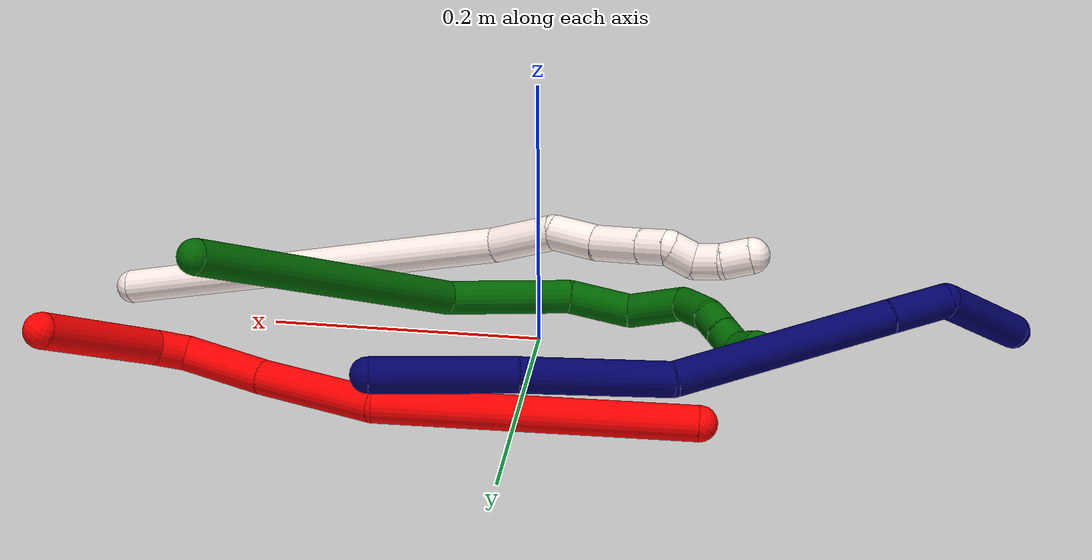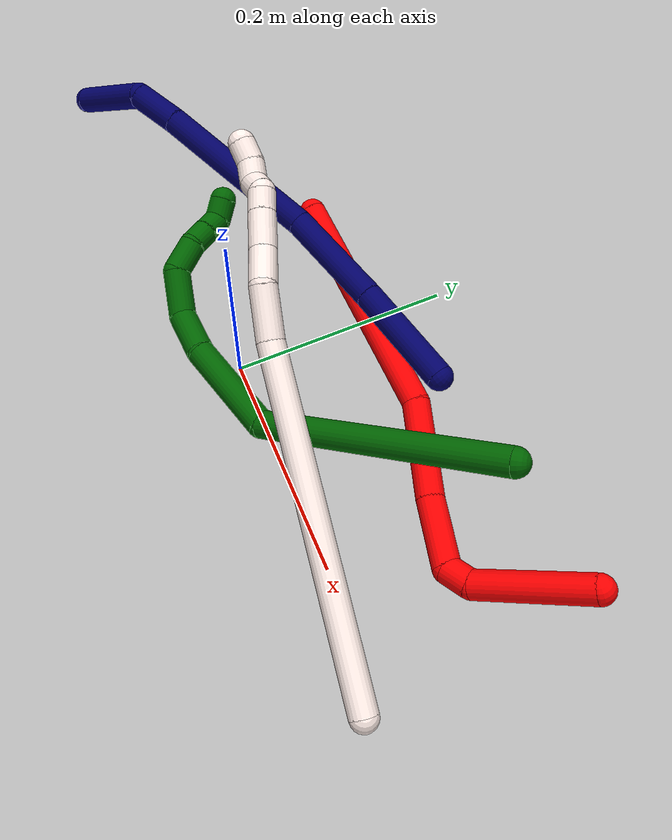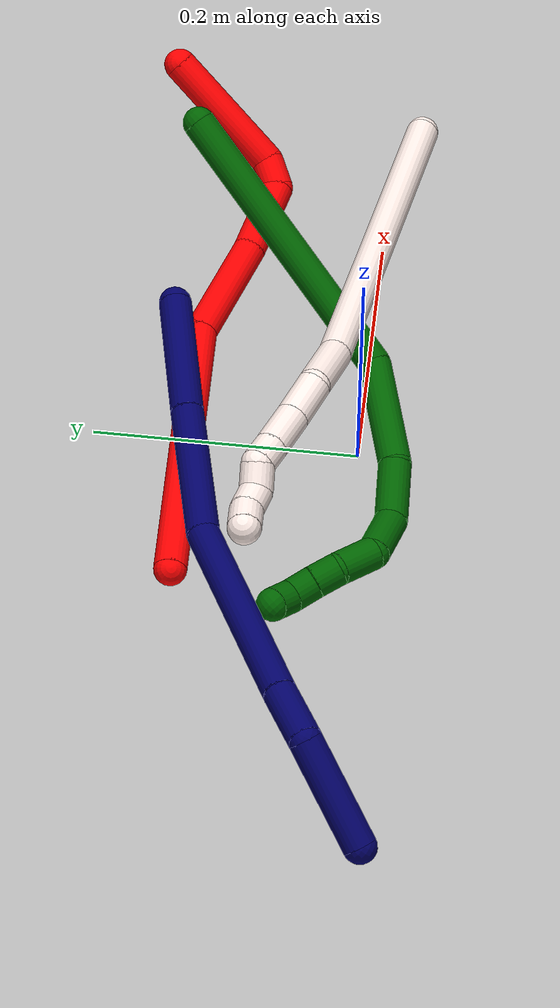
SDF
<sdf version="1.7">
 <world name="default">
  <model name="2">
   <static>0</static>
   <link name="2">
    <collision name="collision-cylinder-e_1_1_4">
     <pose>-0.007217 0.05017 0.003344 -1.50424 -0.142554 0.133397</pose>
     <geometry><cylinder><radius>0.0125</radius><length>0.101593</length></cylinder></geometry>
     <surface>
      <friction><ode><mu>1.16</mu><mu2>1.16</mu2><slip1>0</slip1><slip2>0</slip2></ode></friction>
      <contact><ode><kp>1e+06</kp><kd>1</kd><max_vel>0</max_vel><min_depth>0.001</min_depth></ode></contact>
     </surface>
    </collision>
    <visual name="visual-cylinder-e_1_1_4">
     <pose>-0.007217 0.05017 0.003344 -1.50424 -0.142554 0.133397</pose>
     <geometry><cylinder><radius>0.0125</radius><length>0.101593</length></cylinder></geometry>
     <material><ambient>1 0 0 1</ambient></material>
    </visual>
    <collision name="collision-cylinder-e_2_4_5">
     <pose>-0.020957 0.11021 0.00454 -1.7851 -0.573404 0.701529</pose>
     <geometry><cylinder><radius>0.0125</radius><length>0.024049</length></cylinder></geometry>
     <surface>
      <friction><ode><mu>1.16</mu><mu2>1.16</mu2><slip1>0</slip1><slip2>0</slip2></ode></friction>
      <contact><ode><kp>1e+06</kp><kd>1</kd><max_vel>0</max_vel><min_depth>0.001</min_depth></ode></contact>
     </surface>
    </collision>
    <visual name="visual-cylinder-e_2_4_5">
     <pose>-0.020957 0.11021 0.00454 -1.7851 -0.573404 0.701529</pose>
     <geometry><cylinder><radius>0.0125</radius><length>0.024049</length></cylinder></geometry>
     <material><ambient>1 0 0 1</ambient></material>
    </visual>
    <collision name="collision-cylinder-e_3_5_6">
     <pose>-0.055293 0.127154 -0.008789 -2.57753 -1.12679 2.28146</pose>
     <geometry><cylinder><radius>0.0125</radius><length>0.061598</length></cylinder></geometry>
     <surface>
      <friction><ode><mu>1.16</mu><mu2>1.16</mu2><slip1>0</slip1><slip2>0</slip2></ode></friction>
      <contact><ode><kp>1e+06</kp><kd>1</kd><max_vel>0</max_vel><min_depth>0.001</min_depth></ode></contact>
     </surface>
    </collision>
    <visual name="visual-cylinder-e_3_5_6">
     <pose>-0.055293 0.127154 -0.008789 -2.57753 -1.12679 2.28146</pose>
     <geometry><cylinder><radius>0.0125</radius><length>0.061598</length></cylinder></geometry>
     <material><ambient>1 0 0 1</ambient></material>
    </visual>
    <collision name="collision-cylinder-e_4_6_7">
     <pose>-0.12287 0.140091 -0.039668 -2.85222 -1.09375 2.67178</pose>
     <geometry><cylinder><radius>0.0125</radius><length>0.089524</length></cylinder></geometry>
     <surface>
      <friction><ode><mu>1.16</mu><mu2>1.16</mu2><slip1>0</slip1><slip2>0</slip2></ode></friction>
      <contact><ode><kp>1e+06</kp><kd>1</kd><max_vel>0</max_vel><min_depth>0.001</min_depth></ode></contact>
     </surface>
    </collision>
    <visual name="visual-cylinder-e_4_6_7">
     <pose>-0.12287 0.140091 -0.039668 -2.85222 -1.09375 2.67178</pose>
     <geometry><cylinder><radius>0.0125</radius><length>0.089524</length></cylinder></geometry>
     <material><ambient>1 0 0 1</ambient></material>
    </visual>
    <collision name="collision-cylinder-e_5_7_2">
     <pose>-0.245978 0.193155 -0.116678 -2.45266 -0.843067 1.792</pose>
     <geometry><cylinder><radius>0.0125</radius><length>0.223235</length></cylinder></geometry>
     <surface>
      <friction><ode><mu>1.16</mu><mu2>1.16</mu2><slip1>0</slip1><slip2>0</slip2></ode></friction>
      <contact><ode><kp>1e+06</kp><kd>1</kd><max_vel>0</max_vel><min_depth>0.001</min_depth></ode></contact>
     </surface>
    </collision>
    <visual name="visual-cylinder-e_5_7_2">
     <pose>-0.245978 0.193155 -0.116678 -2.45266 -0.843067 1.792</pose>
     <geometry><cylinder><radius>0.0125</radius><length>0.223235</length></cylinder></geometry>
     <material><ambient>1 0 0 1</ambient></material>
    </visual>
    <collision name="collision-sphere-2">
     <pose>-0.329322 0.240354 -0.17399 0 -0 0</pose>
     <geometry><sphere><radius>0.0125</radius></sphere></geometry>
     <surface>
      <friction><ode><mu>1.16</mu><mu2>1.16</mu2><slip1>0</slip1><slip2>0</slip2></ode></friction>
      <contact><ode><kp>1e+06</kp><kd>1</kd><max_vel>0</max_vel><min_depth>0.001</min_depth></ode></contact>
     </surface>
    </collision>
    <visual name="visual-sphere-2">
     <pose>-0.329322 0.240354 -0.17399 0 -0 0</pose>
     <geometry><sphere><radius>0.0125</radius></sphere></geometry>
     <material><ambient>1 0 0 1</ambient></material>
    </visual>
    <collision name="collision-sphere-7">
     <pose>-0.162635 0.145956 -0.059367 0 -0 0</pose>
     <geometry><sphere><radius>0.0125</radius></sphere></geometry>
     <surface>
      <friction><ode><mu>1.16</mu><mu2>1.16</mu2><slip1>0</slip1><slip2>0</slip2></ode></friction>
      <contact><ode><kp>1e+06</kp><kd>1</kd><max_vel>0</max_vel><min_depth>0.001</min_depth></ode></contact>
     </surface>
    </collision>
    <visual name="visual-sphere-7">
     <pose>-0.162635 0.145956 -0.059367 0 -0 0</pose>
     <geometry><sphere><radius>0.0125</radius></sphere></geometry>
     <material><ambient>1 0 0 1</ambient></material>
    </visual>
    <collision name="collision-sphere-6">
     <pose>-0.083106 0.134227 -0.01997 0 -0 0</pose>
     <geometry><sphere><radius>0.0125</radius></sphere></geometry>
     <surface>
      <friction><ode><mu>1.16</mu><mu2>1.16</mu2><slip1>0</slip1><slip2>0</slip2></ode></friction>
      <contact><ode><kp>1e+06</kp><kd>1</kd><max_vel>0</max_vel><min_depth>0.001</min_depth></ode></contact>
     </surface>
    </collision>
    <visual name="visual-sphere-6">
     <pose>-0.083106 0.134227 -0.01997 0 -0 0</pose>
     <geometry><sphere><radius>0.0125</radius></sphere></geometry>
     <material><ambient>1 0 0 1</ambient></material>
    </visual>
    <collision name="collision-sphere-5">
     <pose>-0.02748 0.12008 0.002392 0 -0 0</pose>
     <geometry><sphere><radius>0.0125</radius></sphere></geometry>
     <surface>
      <friction><ode><mu>1.16</mu><mu2>1.16</mu2><slip1>0</slip1><slip2>0</slip2></ode></friction>
      <contact><ode><kp>1e+06</kp><kd>1</kd><max_vel>0</max_vel><min_depth>0.001</min_depth></ode></contact>
     </surface>
    </collision>
    <visual name="visual-sphere-5">
     <pose>-0.02748 0.12008 0.002392 0 -0 0</pose>
     <geometry><sphere><radius>0.0125</radius></sphere></geometry>
     <material><ambient>1 0 0 1</ambient></material>
    </visual>
    <collision name="collision-sphere-1">
     <geometry><sphere><radius>0.0125</radius></sphere></geometry>
     <surface>
      <friction><ode><mu>1.16</mu><mu2>1.16</mu2><slip1>0</slip1><slip2>0</slip2></ode></friction>
      <contact><ode><kp>1e+06</kp><kd>1</kd><max_vel>0</max_vel><min_depth>0.001</min_depth></ode></contact>
     </surface>
    </collision>
    <visual name="visual-sphere-1">
     <geometry><sphere><radius>0.0125</radius></sphere></geometry>
     <material><ambient>1 0 0 1</ambient></material>
    </visual>
    <collision name="collision-sphere-4">
     <pose>-0.014433 0.10034 0.006688 0 -0 0</pose>
     <geometry><sphere><radius>0.0125</radius></sphere></geometry>
     <surface>
      <friction><ode><mu>1.16</mu><mu2>1.16</mu2><slip1>0</slip1><slip2>0</slip2></ode></friction>
      <contact><ode><kp>1e+06</kp><kd>1</kd><max_vel>0</max_vel><min_depth>0.001</min_depth></ode></contact>
     </surface>
    </collision>
    <visual name="visual-sphere-4">
     <pose>-0.014433 0.10034 0.006688 0 -0 0</pose>
     <geometry><sphere><radius>0.0125</radius></sphere></geometry>
     <material><ambient>1 0 0 1</ambient></material>
    </visual>
    <inertial>
     <pose>-0.141108 0.142481 -0.059381 0 -0 0</pose>
     <mass>0.5</mass>
     <inertia>
      <ixx>0.000537</ixx>
      <ixy>0</ixy>
      <ixz>0</ixz>
      <iyy>0.001341</iyy>
      <iyz>0</iyz>
      <izz>0.000274</izz>
     </inertia>
    </inertial>
   </link>
   <pose>0.309383 0.171528 0.076529 -2.71516 -0.372179 -0.620398</pose>
  </model>
  <model name="6">
   <static>0</static>
   <link name="6">
    <collision name="collision-cylinder-e_1_1_4">
     <pose>-0.009334 0.00941 -0.112762 -3.05833 -0.082306 1.55924</pose>
     <geometry><cylinder><radius>0.0125</radius><length>0.227076</length></cylinder></geometry>
     <surface>
      <friction><ode><mu>1.16</mu><mu2>1.16</mu2><slip1>0</slip1><slip2>0</slip2></ode></friction>
      <contact><ode><kp>1e+06</kp><kd>1</kd><max_vel>0</max_vel><min_depth>0.001</min_depth></ode></contact>
     </surface>
    </collision>
    <visual name="visual-cylinder-e_1_1_4">
     <pose>-0.009334 0.00941 -0.112762 -3.05833 -0.082306 1.55924</pose>
     <geometry><cylinder><radius>0.0125</radius><length>0.227076</length></cylinder></geometry>
     <material><ambient>0 0.392157 0.003922 1</ambient></material>
    </visual>
    <collision name="collision-cylinder-e_2_4_5">
     <pose>-0.046449 0.008763 -0.260332 2.8603 -0.654111 -2.35084</pose>
     <geometry><cylinder><radius>0.0125</radius><length>0.091314</length></cylinder></geometry>
     <surface>
      <friction><ode><mu>1.16</mu><mu2>1.16</mu2><slip1>0</slip1><slip2>0</slip2></ode></friction>
      <contact><ode><kp>1e+06</kp><kd>1</kd><max_vel>0</max_vel><min_depth>0.001</min_depth></ode></contact>
     </surface>
    </collision>
    <visual name="visual-cylinder-e_2_4_5">
     <pose>-0.046449 0.008763 -0.260332 2.8603 -0.654111 -2.35084</pose>
     <geometry><cylinder><radius>0.0125</radius><length>0.091314</length></cylinder></geometry>
     <material><ambient>0 0.392157 0.003922 1</ambient></material>
    </visual>
    <collision name="collision-cylinder-e_3_5_6">
     <pose>-0.091697 -0.001569 -0.310449 3.12373 -0.851134 -3.10219</pose>
     <geometry><cylinder><radius>0.0125</radius><length>0.046455</length></cylinder></geometry>
     <surface>
      <friction><ode><mu>1.16</mu><mu2>1.16</mu2><slip1>0</slip1><slip2>0</slip2></ode></friction>
      <contact><ode><kp>1e+06</kp><kd>1</kd><max_vel>0</max_vel><min_depth>0.001</min_depth></ode></contact>
     </surface>
    </collision>
    <visual name="visual-cylinder-e_3_5_6">
     <pose>-0.091697 -0.001569 -0.310449 3.12373 -0.851134 -3.10219</pose>
     <geometry><cylinder><radius>0.0125</radius><length>0.046455</length></cylinder></geometry>
     <material><ambient>0 0.392157 0.003922 1</ambient></material>
    </visual>
    <collision name="collision-cylinder-e_4_6_7">
     <pose>-0.128166 -0.010978 -0.331255 2.11258 -1.05942 -1.60596</pose>
     <geometry><cylinder><radius>0.0125</radius><length>0.043576</length></cylinder></geometry>
     <surface>
      <friction><ode><mu>1.16</mu><mu2>1.16</mu2><slip1>0</slip1><slip2>0</slip2></ode></friction>
      <contact><ode><kp>1e+06</kp><kd>1</kd><max_vel>0</max_vel><min_depth>0.001</min_depth></ode></contact>
     </surface>
    </collision>
    <visual name="visual-cylinder-e_4_6_7">
     <pose>-0.128166 -0.010978 -0.331255 2.11258 -1.05942 -1.60596</pose>
     <geometry><cylinder><radius>0.0125</radius><length>0.043576</length></cylinder></geometry>
     <material><ambient>0 0.392157 0.003922 1</ambient></material>
    </visual>
    <collision name="collision-cylinder-e_5_7_8">
     <pose>-0.162145 -0.020562 -0.333047 0.120523 -1.32656 -0.094218</pose>
     <geometry><cylinder><radius>0.0125</radius><length>0.030873</length></cylinder></geometry>
     <surface>
      <friction><ode><mu>1.16</mu><mu2>1.16</mu2><slip1>0</slip1><slip2>0</slip2></ode></friction>
      <contact><ode><kp>1e+06</kp><kd>1</kd><max_vel>0</max_vel><min_depth>0.001</min_depth></ode></contact>
     </surface>
    </collision>
    <visual name="visual-cylinder-e_5_7_8">
     <pose>-0.162145 -0.020562 -0.333047 0.120523 -1.32656 -0.094218</pose>
     <geometry><cylinder><radius>0.0125</radius><length>0.030873</length></cylinder></geometry>
     <material><ambient>0 0.392157 0.003922 1</ambient></material>
    </visual>
    <collision name="collision-cylinder-e_6_8_9">
     <pose>-0.186612 -0.017896 -0.327027 -0.931713 -1.18251 0.65107</pose>
     <geometry><cylinder><radius>0.0125</radius><length>0.020503</length></cylinder></geometry>
     <surface>
      <friction><ode><mu>1.16</mu><mu2>1.16</mu2><slip1>0</slip1><slip2>0</slip2></ode></friction>
      <contact><ode><kp>1e+06</kp><kd>1</kd><max_vel>0</max_vel><min_depth>0.001</min_depth></ode></contact>
     </surface>
    </collision>
    <visual name="visual-cylinder-e_6_8_9">
     <pose>-0.186612 -0.017896 -0.327027 -0.931713 -1.18251 0.65107</pose>
     <geometry><cylinder><radius>0.0125</radius><length>0.020503</length></cylinder></geometry>
     <material><ambient>0 0.392157 0.003922 1</ambient></material>
    </visual>
    <collision name="collision-cylinder-e_7_9_10">
     <pose>-0.20532 -0.011382 -0.32284 -1.0675 -1.17249 0.748013</pose>
     <geometry><cylinder><radius>0.0125</radius><length>0.020007</length></cylinder></geometry>
     <surface>
      <friction><ode><mu>1.16</mu><mu2>1.16</mu2><slip1>0</slip1><slip2>0</slip2></ode></friction>
      <contact><ode><kp>1e+06</kp><kd>1</kd><max_vel>0</max_vel><min_depth>0.001</min_depth></ode></contact>
     </surface>
    </collision>
    <visual name="visual-cylinder-e_7_9_10">
     <pose>-0.20532 -0.011382 -0.32284 -1.0675 -1.17249 0.748013</pose>
     <geometry><cylinder><radius>0.0125</radius><length>0.020007</length></cylinder></geometry>
     <material><ambient>0 0.392157 0.003922 1</ambient></material>
    </visual>
    <collision name="collision-cylinder-e_8_10_2">
     <pose>-0.223821 -0.011614 -0.319339 1.14896 -1.16566 -0.806649</pose>
     <geometry><cylinder><radius>0.0125</radius><length>0.020195</length></cylinder></geometry>
     <surface>
      <friction><ode><mu>1.16</mu><mu2>1.16</mu2><slip1>0</slip1><slip2>0</slip2></ode></friction>
      <contact><ode><kp>1e+06</kp><kd>1</kd><max_vel>0</max_vel><min_depth>0.001</min_depth></ode></contact>
     </surface>
    </collision>
    <visual name="visual-cylinder-e_8_10_2">
     <pose>-0.223821 -0.011614 -0.319339 1.14896 -1.16566 -0.806649</pose>
     <geometry><cylinder><radius>0.0125</radius><length>0.020195</length></cylinder></geometry>
     <material><ambient>0 0.392157 0.003922 1</ambient></material>
    </visual>
    <collision name="collision-sphere-2">
     <pose>-0.233101 -0.015245 -0.31771 0 -0 0</pose>
     <geometry><sphere><radius>0.0125</radius></sphere></geometry>
     <surface>
      <friction><ode><mu>1.16</mu><mu2>1.16</mu2><slip1>0</slip1><slip2>0</slip2></ode></friction>
      <contact><ode><kp>1e+06</kp><kd>1</kd><max_vel>0</max_vel><min_depth>0.001</min_depth></ode></contact>
     </surface>
    </collision>
    <visual name="visual-sphere-2">
     <pose>-0.233101 -0.015245 -0.31771 0 -0 0</pose>
     <geometry><sphere><radius>0.0125</radius></sphere></geometry>
     <material><ambient>0 0.392157 0.003922 1</ambient></material>
    </visual>
    <collision name="collision-sphere-10">
     <pose>-0.214541 -0.007983 -0.320969 0 -0 0</pose>
     <geometry><sphere><radius>0.0125</radius></sphere></geometry>
     <surface>
      <friction><ode><mu>1.16</mu><mu2>1.16</mu2><slip1>0</slip1><slip2>0</slip2></ode></friction>
      <contact><ode><kp>1e+06</kp><kd>1</kd><max_vel>0</max_vel><min_depth>0.001</min_depth></ode></contact>
     </surface>
    </collision>
    <visual name="visual-sphere-10">
     <pose>-0.214541 -0.007983 -0.320969 0 -0 0</pose>
     <geometry><sphere><radius>0.0125</radius></sphere></geometry>
     <material><ambient>0 0.392157 0.003922 1</ambient></material>
    </visual>
    <collision name="collision-sphere-9">
     <pose>-0.1961 -0.014781 -0.324712 0 -0 0</pose>
     <geometry><sphere><radius>0.0125</radius></sphere></geometry>
     <surface>
      <friction><ode><mu>1.16</mu><mu2>1.16</mu2><slip1>0</slip1><slip2>0</slip2></ode></friction>
      <contact><ode><kp>1e+06</kp><kd>1</kd><max_vel>0</max_vel><min_depth>0.001</min_depth></ode></contact>
     </surface>
    </collision>
    <visual name="visual-sphere-9">
     <pose>-0.1961 -0.014781 -0.324712 0 -0 0</pose>
     <geometry><sphere><radius>0.0125</radius></sphere></geometry>
     <material><ambient>0 0.392157 0.003922 1</ambient></material>
    </visual>
    <collision name="collision-sphere-4">
     <pose>-0.018669 0.018821 -0.225523 0 -0 0</pose>
     <geometry><sphere><radius>0.0125</radius></sphere></geometry>
     <surface>
      <friction><ode><mu>1.16</mu><mu2>1.16</mu2><slip1>0</slip1><slip2>0</slip2></ode></friction>
      <contact><ode><kp>1e+06</kp><kd>1</kd><max_vel>0</max_vel><min_depth>0.001</min_depth></ode></contact>
     </surface>
    </collision>
    <visual name="visual-sphere-4">
     <pose>-0.018669 0.018821 -0.225523 0 -0 0</pose>
     <geometry><sphere><radius>0.0125</radius></sphere></geometry>
     <material><ambient>0 0.392157 0.003922 1</ambient></material>
    </visual>
    <collision name="collision-sphere-1">
     <geometry><sphere><radius>0.0125</radius></sphere></geometry>
     <surface>
      <friction><ode><mu>1.16</mu><mu2>1.16</mu2><slip1>0</slip1><slip2>0</slip2></ode></friction>
      <contact><ode><kp>1e+06</kp><kd>1</kd><max_vel>0</max_vel><min_depth>0.001</min_depth></ode></contact>
     </surface>
    </collision>
    <visual name="visual-sphere-1">
     <geometry><sphere><radius>0.0125</radius></sphere></geometry>
     <material><ambient>0 0.392157 0.003922 1</ambient></material>
    </visual>
    <collision name="collision-sphere-8">
     <pose>-0.177123 -0.021011 -0.329342 0 -0 0</pose>
     <geometry><sphere><radius>0.0125</radius></sphere></geometry>
     <surface>
      <friction><ode><mu>1.16</mu><mu2>1.16</mu2><slip1>0</slip1><slip2>0</slip2></ode></friction>
      <contact><ode><kp>1e+06</kp><kd>1</kd><max_vel>0</max_vel><min_depth>0.001</min_depth></ode></contact>
     </surface>
    </collision>
    <visual name="visual-sphere-8">
     <pose>-0.177123 -0.021011 -0.329342 0 -0 0</pose>
     <geometry><sphere><radius>0.0125</radius></sphere></geometry>
     <material><ambient>0 0.392157 0.003922 1</ambient></material>
    </visual>
    <collision name="collision-sphere-5">
     <pose>-0.074229 -0.001295 -0.295141 0 -0 0</pose>
     <geometry><sphere><radius>0.0125</radius></sphere></geometry>
     <surface>
      <friction><ode><mu>1.16</mu><mu2>1.16</mu2><slip1>0</slip1><slip2>0</slip2></ode></friction>
      <contact><ode><kp>1e+06</kp><kd>1</kd><max_vel>0</max_vel><min_depth>0.001</min_depth></ode></contact>
     </surface>
    </collision>
    <visual name="visual-sphere-5">
     <pose>-0.074229 -0.001295 -0.295141 0 -0 0</pose>
     <geometry><sphere><radius>0.0125</radius></sphere></geometry>
     <material><ambient>0 0.392157 0.003922 1</ambient></material>
    </visual>
    <collision name="collision-sphere-6">
     <pose>-0.109165 -0.001842 -0.325756 0 -0 0</pose>
     <geometry><sphere><radius>0.0125</radius></sphere></geometry>
     <surface>
      <friction><ode><mu>1.16</mu><mu2>1.16</mu2><slip1>0</slip1><slip2>0</slip2></ode></friction>
      <contact><ode><kp>1e+06</kp><kd>1</kd><max_vel>0</max_vel><min_depth>0.001</min_depth></ode></contact>
     </surface>
    </collision>
    <visual name="visual-sphere-6">
     <pose>-0.109165 -0.001842 -0.325756 0 -0 0</pose>
     <geometry><sphere><radius>0.0125</radius></sphere></geometry>
     <material><ambient>0 0.392157 0.003922 1</ambient></material>
    </visual>
    <collision name="collision-sphere-7">
     <pose>-0.147166 -0.020113 -0.336753 0 -0 0</pose>
     <geometry><sphere><radius>0.0125</radius></sphere></geometry>
     <surface>
      <friction><ode><mu>1.16</mu><mu2>1.16</mu2><slip1>0</slip1><slip2>0</slip2></ode></friction>
      <contact><ode><kp>1e+06</kp><kd>1</kd><max_vel>0</max_vel><min_depth>0.001</min_depth></ode></contact>
     </surface>
    </collision>
    <visual name="visual-sphere-7">
     <pose>-0.147166 -0.020113 -0.336753 0 -0 0</pose>
     <geometry><sphere><radius>0.0125</radius></sphere></geometry>
     <material><ambient>0 0.392157 0.003922 1</ambient></material>
    </visual>
    <inertial>
     <pose>-0.067332 0.001844 -0.216259 0 -0 0</pose>
     <mass>0.5</mass>
     <inertia><ixx>0.00089</ixx><ixy>0</ixy><ixz>0</ixz><iyy>0.001011</iyy><iyz>0</iyz><izz>5.6e-05</izz></inertia>
    </inertial>
   </link>
   <pose>0.208578 0.143958 0.124217 -1.20612 0.016624 -0.652827</pose>
  </model>
  <model name="7">
   <static>0</static>
   <link name="7">
    <collision name="collision-cylinder-e_1_1_4">
     <pose>-0.04609 -0.016592 -0.012221 2.20562 -1.15035 -1.81719</pose>
     <geometry><cylinder><radius>0.0125</radius><length>0.100975</length></cylinder></geometry>
     <surface>
      <friction><ode><mu>1.16</mu><mu2>1.16</mu2><slip1>0</slip1><slip2>0</slip2></ode></friction>
      <contact><ode><kp>1e+06</kp><kd>1</kd><max_vel>0</max_vel><min_depth>0.001</min_depth></ode></contact>
     </surface>
    </collision>
    <visual name="visual-cylinder-e_1_1_4">
     <pose>-0.04609 -0.016592 -0.012221 2.20562 -1.15035 -1.81719</pose>
     <geometry><cylinder><radius>0.0125</radius><length>0.100975</length></cylinder></geometry>
     <material><ambient>0.003922 0 0.403922 1</ambient></material>
    </visual>
    <collision name="collision-cylinder-e_2_4_5">
     <pose>-0.14037 -0.049312 -0.039675 2.32771 -1.13936 -1.95699</pose>
     <geometry><cylinder><radius>0.0125</radius><length>0.106102</length></cylinder></geometry>
     <surface>
      <friction><ode><mu>1.16</mu><mu2>1.16</mu2><slip1>0</slip1><slip2>0</slip2></ode></friction>
      <contact><ode><kp>1e+06</kp><kd>1</kd><max_vel>0</max_vel><min_depth>0.001</min_depth></ode></contact>
     </surface>
    </collision>
    <visual name="visual-cylinder-e_2_4_5">
     <pose>-0.14037 -0.049312 -0.039675 2.32771 -1.13936 -1.95699</pose>
     <geometry><cylinder><radius>0.0125</radius><length>0.106102</length></cylinder></geometry>
     <material><ambient>0.003922 0 0.403922 1</ambient></material>
    </visual>
    <collision name="collision-cylinder-e_3_5_6">
     <pose>-0.250527 -0.112827 -0.079264 2.04553 -0.860634 -1.28953</pose>
     <geometry><cylinder><radius>0.0125</radius><length>0.163446</length></cylinder></geometry>
     <surface>
      <friction><ode><mu>1.16</mu><mu2>1.16</mu2><slip1>0</slip1><slip2>0</slip2></ode></friction>
      <contact><ode><kp>1e+06</kp><kd>1</kd><max_vel>0</max_vel><min_depth>0.001</min_depth></ode></contact>
     </surface>
    </collision>
    <visual name="visual-cylinder-e_3_5_6">
     <pose>-0.250527 -0.112827 -0.079264 2.04553 -0.860634 -1.28953</pose>
     <geometry><cylinder><radius>0.0125</radius><length>0.163446</length></cylinder></geometry>
     <material><ambient>0.003922 0 0.403922 1</ambient></material>
    </visual>
    <collision name="collision-cylinder-e_4_6_7">
     <pose>-0.329391 -0.173379 -0.111719 2.12247 -0.82992 -1.33524</pose>
     <geometry><cylinder><radius>0.0125</radius><length>0.045801</length></cylinder></geometry>
     <surface>
      <friction><ode><mu>1.16</mu><mu2>1.16</mu2><slip1>0</slip1><slip2>0</slip2></ode></friction>
      <contact><ode><kp>1e+06</kp><kd>1</kd><max_vel>0</max_vel><min_depth>0.001</min_depth></ode></contact>
     </surface>
    </collision>
    <visual name="visual-cylinder-e_4_6_7">
     <pose>-0.329391 -0.173379 -0.111719 2.12247 -0.82992 -1.33524</pose>
     <geometry><cylinder><radius>0.0125</radius><length>0.045801</length></cylinder></geometry>
     <material><ambient>0.003922 0 0.403922 1</ambient></material>
    </visual>
    <collision name="collision-cylinder-e_5_7_2">
     <pose>-0.371646 -0.190601 -0.15285 3.01933 -0.651101 -2.78285</pose>
     <geometry><cylinder><radius>0.0125</radius><length>0.083677</length></cylinder></geometry>
     <surface>
      <friction><ode><mu>1.16</mu><mu2>1.16</mu2><slip1>0</slip1><slip2>0</slip2></ode></friction>
      <contact><ode><kp>1e+06</kp><kd>1</kd><max_vel>0</max_vel><min_depth>0.001</min_depth></ode></contact>
     </surface>
    </collision>
    <visual name="visual-cylinder-e_5_7_2">
     <pose>-0.371646 -0.190601 -0.15285 3.01933 -0.651101 -2.78285</pose>
     <geometry><cylinder><radius>0.0125</radius><length>0.083677</length></cylinder></geometry>
     <material><ambient>0.003922 0 0.403922 1</ambient></material>
    </visual>
    <collision name="collision-sphere-2">
     <pose>-0.397002 -0.194659 -0.18588 0 -0 0</pose>
     <geometry><sphere><radius>0.0125</radius></sphere></geometry>
     <surface>
      <friction><ode><mu>1.16</mu><mu2>1.16</mu2><slip1>0</slip1><slip2>0</slip2></ode></friction>
      <contact><ode><kp>1e+06</kp><kd>1</kd><max_vel>0</max_vel><min_depth>0.001</min_depth></ode></contact>
     </surface>
    </collision>
    <visual name="visual-sphere-2">
     <pose>-0.397002 -0.194659 -0.18588 0 -0 0</pose>
     <geometry><sphere><radius>0.0125</radius></sphere></geometry>
     <material><ambient>0.003922 0 0.403922 1</ambient></material>
    </visual>
    <collision name="collision-sphere-7">
     <pose>-0.346289 -0.186542 -0.119819 0 -0 0</pose>
     <geometry><sphere><radius>0.0125</radius></sphere></geometry>
     <surface>
      <friction><ode><mu>1.16</mu><mu2>1.16</mu2><slip1>0</slip1><slip2>0</slip2></ode></friction>
      <contact><ode><kp>1e+06</kp><kd>1</kd><max_vel>0</max_vel><min_depth>0.001</min_depth></ode></contact>
     </surface>
    </collision>
    <visual name="visual-sphere-7">
     <pose>-0.346289 -0.186542 -0.119819 0 -0 0</pose>
     <geometry><sphere><radius>0.0125</radius></sphere></geometry>
     <material><ambient>0.003922 0 0.403922 1</ambient></material>
    </visual>
    <collision name="collision-sphere-6">
     <pose>-0.312494 -0.160215 -0.103618 0 -0 0</pose>
     <geometry><sphere><radius>0.0125</radius></sphere></geometry>
     <surface>
      <friction><ode><mu>1.16</mu><mu2>1.16</mu2><slip1>0</slip1><slip2>0</slip2></ode></friction>
      <contact><ode><kp>1e+06</kp><kd>1</kd><max_vel>0</max_vel><min_depth>0.001</min_depth></ode></contact>
     </surface>
    </collision>
    <visual name="visual-sphere-6">
     <pose>-0.312494 -0.160215 -0.103618 0 -0 0</pose>
     <geometry><sphere><radius>0.0125</radius></sphere></geometry>
     <material><ambient>0.003922 0 0.403922 1</ambient></material>
    </visual>
    <collision name="collision-sphere-5">
     <pose>-0.18856 -0.065439 -0.054909 0 -0 0</pose>
     <geometry><sphere><radius>0.0125</radius></sphere></geometry>
     <surface>
      <friction><ode><mu>1.16</mu><mu2>1.16</mu2><slip1>0</slip1><slip2>0</slip2></ode></friction>
      <contact><ode><kp>1e+06</kp><kd>1</kd><max_vel>0</max_vel><min_depth>0.001</min_depth></ode></contact>
     </surface>
    </collision>
    <visual name="visual-sphere-5">
     <pose>-0.18856 -0.065439 -0.054909 0 -0 0</pose>
     <geometry><sphere><radius>0.0125</radius></sphere></geometry>
     <material><ambient>0.003922 0 0.403922 1</ambient></material>
    </visual>
    <collision name="collision-sphere-1">
     <geometry><sphere><radius>0.0125</radius></sphere></geometry>
     <surface>
      <friction><ode><mu>1.16</mu><mu2>1.16</mu2><slip1>0</slip1><slip2>0</slip2></ode></friction>
      <contact><ode><kp>1e+06</kp><kd>1</kd><max_vel>0</max_vel><min_depth>0.001</min_depth></ode></contact>
     </surface>
    </collision>
    <visual name="visual-sphere-1">
     <geometry><sphere><radius>0.0125</radius></sphere></geometry>
     <material><ambient>0.003922 0 0.403922 1</ambient></material>
    </visual>
    <collision name="collision-sphere-4">
     <pose>-0.092181 -0.033185 -0.024442 0 -0 0</pose>
     <geometry><sphere><radius>0.0125</radius></sphere></geometry>
     <surface>
      <friction><ode><mu>1.16</mu><mu2>1.16</mu2><slip1>0</slip1><slip2>0</slip2></ode></friction>
      <contact><ode><kp>1e+06</kp><kd>1</kd><max_vel>0</max_vel><min_depth>0.001</min_depth></ode></contact>
     </surface>
    </collision>
    <visual name="visual-sphere-4">
     <pose>-0.092181 -0.033185 -0.024442 0 -0 0</pose>
     <geometry><sphere><radius>0.0125</radius></sphere></geometry>
     <material><ambient>0.003922 0 0.403922 1</ambient></material>
    </visual>
    <inertial>
     <pose>-0.213359 -0.098477 -0.072611 0 -0 0</pose>
     <mass>0.5</mass>
     <inertia>
      <ixx>-0.000355</ixx>
      <ixy>0</ixy>
      <ixz>0</ixz>
      <iyy>7.1e-05</iyy>
      <iyz>0</iyz>
      <izz>0.000768</izz>
     </inertia>
    </inertial>
   </link>
   <pose>0.094643 0.149058 0.045984 -0.841258 -0.139322 -0.200338</pose>
  </model>
  <model name="11">
   <static>0</static>
   <link name="11">
    <collision name="collision-cylinder-e_1_1_4">
     <pose>-0.136826 -0.002573 0.063479 0.040516 -1.1361 -0.02586</pose>
     <geometry><cylinder><radius>0.0125</radius><length>0.301712</length></cylinder></geometry>
     <surface>
      <friction><ode><mu>1.16</mu><mu2>1.16</mu2><slip1>0</slip1><slip2>0</slip2></ode></friction>
      <contact><ode><kp>1e+06</kp><kd>1</kd><max_vel>0</max_vel><min_depth>0.001</min_depth></ode></contact>
     </surface>
    </collision>
    <visual name="visual-cylinder-e_1_1_4">
     <pose>-0.136826 -0.002573 0.063479 0.040516 -1.1361 -0.02586</pose>
     <geometry><cylinder><radius>0.0125</radius><length>0.301712</length></cylinder></geometry>
     <material><ambient>1 0.933333 0.909804 1</ambient></material>
    </visual>
    <collision name="collision-cylinder-e_2_4_5">
     <pose>-0.2939 -0.003399 0.139959 -0.133612 -0.995925 0.072715</pose>
     <geometry><cylinder><radius>0.0125</radius><length>0.048251</length></cylinder></geometry>
     <surface>
      <friction><ode><mu>1.16</mu><mu2>1.16</mu2><slip1>0</slip1><slip2>0</slip2></ode></friction>
      <contact><ode><kp>1e+06</kp><kd>1</kd><max_vel>0</max_vel><min_depth>0.001</min_depth></ode></contact>
     </surface>
    </collision>
    <visual name="visual-cylinder-e_2_4_5">
     <pose>-0.2939 -0.003399 0.139959 -0.133612 -0.995925 0.072715</pose>
     <geometry><cylinder><radius>0.0125</radius><length>0.048251</length></cylinder></geometry>
     <material><ambient>1 0.933333 0.909804 1</ambient></material>
    </visual>
    <collision name="collision-cylinder-e_3_5_6">
     <pose>-0.330389 0.00231 0.156144 -0.893763 -1.26751 0.677208</pose>
     <geometry><cylinder><radius>0.0125</radius><length>0.034036</length></cylinder></geometry>
     <surface>
      <friction><ode><mu>1.16</mu><mu2>1.16</mu2><slip1>0</slip1><slip2>0</slip2></ode></friction>
      <contact><ode><kp>1e+06</kp><kd>1</kd><max_vel>0</max_vel><min_depth>0.001</min_depth></ode></contact>
     </surface>
    </collision>
    <visual name="visual-cylinder-e_3_5_6">
     <pose>-0.330389 0.00231 0.156144 -0.893763 -1.26751 0.677208</pose>
     <geometry><cylinder><radius>0.0125</radius><length>0.034036</length></cylinder></geometry>
     <material><ambient>1 0.933333 0.909804 1</ambient></material>
    </visual>
    <collision name="collision-cylinder-e_4_6_7">
     <pose>-0.362768 0.009687 0.165286 -0.520492 -1.16843 0.348569</pose>
     <geometry><cylinder><radius>0.0125</radius><length>0.035076</length></cylinder></geometry>
     <surface>
      <friction><ode><mu>1.16</mu><mu2>1.16</mu2><slip1>0</slip1><slip2>0</slip2></ode></friction>
      <contact><ode><kp>1e+06</kp><kd>1</kd><max_vel>0</max_vel><min_depth>0.001</min_depth></ode></contact>
     </surface>
    </collision>
    <visual name="visual-cylinder-e_4_6_7">
     <pose>-0.362768 0.009687 0.165286 -0.520492 -1.16843 0.348569</pose>
     <geometry><cylinder><radius>0.0125</radius><length>0.035076</length></cylinder></geometry>
     <material><ambient>1 0.933333 0.909804 1</ambient></material>
    </visual>
    <collision name="collision-cylinder-e_5_7_8">
     <pose>-0.388185 0.015198 0.174917 -0.518464 -1.14321 0.337919</pose>
     <geometry><cylinder><radius>0.0125</radius><length>0.020396</length></cylinder></geometry>
     <surface>
      <friction><ode><mu>1.16</mu><mu2>1.16</mu2><slip1>0</slip1><slip2>0</slip2></ode></friction>
      <contact><ode><kp>1e+06</kp><kd>1</kd><max_vel>0</max_vel><min_depth>0.001</min_depth></ode></contact>
     </surface>
    </collision>
    <visual name="visual-cylinder-e_5_7_8">
     <pose>-0.388185 0.015198 0.174917 -0.518464 -1.14321 0.337919</pose>
     <geometry><cylinder><radius>0.0125</radius><length>0.020396</length></cylinder></geometry>
     <material><ambient>1 0.933333 0.909804 1</ambient></material>
    </visual>
    <collision name="collision-cylinder-e_6_8_9">
     <pose>-0.40697 0.015929 0.175415 2.73573 -1.22207 -2.57016</pose>
     <geometry><cylinder><radius>0.0125</radius><length>0.020229</length></cylinder></geometry>
     <surface>
      <friction><ode><mu>1.16</mu><mu2>1.16</mu2><slip1>0</slip1><slip2>0</slip2></ode></friction>
      <contact><ode><kp>1e+06</kp><kd>1</kd><max_vel>0</max_vel><min_depth>0.001</min_depth></ode></contact>
     </surface>
    </collision>
    <visual name="visual-cylinder-e_6_8_9">
     <pose>-0.40697 0.015929 0.175415 2.73573 -1.22207 -2.57016</pose>
     <geometry><cylinder><radius>0.0125</radius><length>0.020229</length></cylinder></geometry>
     <material><ambient>1 0.933333 0.909804 1</ambient></material>
    </visual>
    <collision name="collision-cylinder-e_7_9_10">
     <pose>-0.425796 0.015334 0.175824 -0.211561 -1.19608 0.144417</pose>
     <geometry><cylinder><radius>0.0125</radius><length>0.020029</length></cylinder></geometry>
     <surface>
      <friction><ode><mu>1.16</mu><mu2>1.16</mu2><slip1>0</slip1><slip2>0</slip2></ode></friction>
      <contact><ode><kp>1e+06</kp><kd>1</kd><max_vel>0</max_vel><min_depth>0.001</min_depth></ode></contact>
     </surface>
    </collision>
    <visual name="visual-cylinder-e_7_9_10">
     <pose>-0.425796 0.015334 0.175824 -0.211561 -1.19608 0.144417</pose>
     <geometry><cylinder><radius>0.0125</radius><length>0.020029</length></cylinder></geometry>
     <material><ambient>1 0.933333 0.909804 1</ambient></material>
    </visual>
    <collision name="collision-cylinder-e_8_10_2">
     <pose>-0.444091 0.014202 0.183715 0.41573 -1.08763 -0.253675</pose>
     <geometry><cylinder><radius>0.0125</radius><length>0.02027</length></cylinder></geometry>
     <surface>
      <friction><ode><mu>1.16</mu><mu2>1.16</mu2><slip1>0</slip1><slip2>0</slip2></ode></friction>
      <contact><ode><kp>1e+06</kp><kd>1</kd><max_vel>0</max_vel><min_depth>0.001</min_depth></ode></contact>
     </surface>
    </collision>
    <visual name="visual-cylinder-e_8_10_2">
     <pose>-0.444091 0.014202 0.183715 0.41573 -1.08763 -0.253675</pose>
     <geometry><cylinder><radius>0.0125</radius><length>0.02027</length></cylinder></geometry>
     <material><ambient>1 0.933333 0.909804 1</ambient></material>
    </visual>
    <collision name="collision-sphere-2">
     <pose>-0.453065 0.0123 0.188023 0 -0 0</pose>
     <geometry><sphere><radius>0.0125</radius></sphere></geometry>
     <surface>
      <friction><ode><mu>1.16</mu><mu2>1.16</mu2><slip1>0</slip1><slip2>0</slip2></ode></friction>
      <contact><ode><kp>1e+06</kp><kd>1</kd><max_vel>0</max_vel><min_depth>0.001</min_depth></ode></contact>
     </surface>
    </collision>
    <visual name="visual-sphere-2">
     <pose>-0.453065 0.0123 0.188023 0 -0 0</pose>
     <geometry><sphere><radius>0.0125</radius></sphere></geometry>
     <material><ambient>1 0.933333 0.909804 1</ambient></material>
    </visual>
    <collision name="collision-sphere-10">
     <pose>-0.435116 0.016104 0.179408 0 -0 0</pose>
     <geometry><sphere><radius>0.0125</radius></sphere></geometry>
     <surface>
      <friction><ode><mu>1.16</mu><mu2>1.16</mu2><slip1>0</slip1><slip2>0</slip2></ode></friction>
      <contact><ode><kp>1e+06</kp><kd>1</kd><max_vel>0</max_vel><min_depth>0.001</min_depth></ode></contact>
     </surface>
    </collision>
    <visual name="visual-sphere-10">
     <pose>-0.435116 0.016104 0.179408 0 -0 0</pose>
     <geometry><sphere><radius>0.0125</radius></sphere></geometry>
     <material><ambient>1 0.933333 0.909804 1</ambient></material>
    </visual>
    <collision name="collision-sphere-9">
     <pose>-0.416476 0.014564 0.17224 0 -0 0</pose>
     <geometry><sphere><radius>0.0125</radius></sphere></geometry>
     <surface>
      <friction><ode><mu>1.16</mu><mu2>1.16</mu2><slip1>0</slip1><slip2>0</slip2></ode></friction>
      <contact><ode><kp>1e+06</kp><kd>1</kd><max_vel>0</max_vel><min_depth>0.001</min_depth></ode></contact>
     </surface>
    </collision>
    <visual name="visual-sphere-9">
     <pose>-0.416476 0.014564 0.17224 0 -0 0</pose>
     <geometry><sphere><radius>0.0125</radius></sphere></geometry>
     <material><ambient>1 0.933333 0.909804 1</ambient></material>
    </visual>
    <collision name="collision-sphere-4">
     <pose>-0.273652 -0.005147 0.126958 0 -0 0</pose>
     <geometry><sphere><radius>0.0125</radius></sphere></geometry>
     <surface>
      <friction><ode><mu>1.16</mu><mu2>1.16</mu2><slip1>0</slip1><slip2>0</slip2></ode></friction>
      <contact><ode><kp>1e+06</kp><kd>1</kd><max_vel>0</max_vel><min_depth>0.001</min_depth></ode></contact>
     </surface>
    </collision>
    <visual name="visual-sphere-4">
     <pose>-0.273652 -0.005147 0.126958 0 -0 0</pose>
     <geometry><sphere><radius>0.0125</radius></sphere></geometry>
     <material><ambient>1 0.933333 0.909804 1</ambient></material>
    </visual>
    <collision name="collision-sphere-1">
     <geometry><sphere><radius>0.0125</radius></sphere></geometry>
     <surface>
      <friction><ode><mu>1.16</mu><mu2>1.16</mu2><slip1>0</slip1><slip2>0</slip2></ode></friction>
      <contact><ode><kp>1e+06</kp><kd>1</kd><max_vel>0</max_vel><min_depth>0.001</min_depth></ode></contact>
     </surface>
    </collision>
    <visual name="visual-sphere-1">
     <geometry><sphere><radius>0.0125</radius></sphere></geometry>
     <material><ambient>1 0.933333 0.909804 1</ambient></material>
    </visual>
    <collision name="collision-sphere-8">
     <pose>-0.397465 0.017293 0.178591 0 -0 0</pose>
     <geometry><sphere><radius>0.0125</radius></sphere></geometry>
     <surface>
      <friction><ode><mu>1.16</mu><mu2>1.16</mu2><slip1>0</slip1><slip2>0</slip2></ode></friction>
      <contact><ode><kp>1e+06</kp><kd>1</kd><max_vel>0</max_vel><min_depth>0.001</min_depth></ode></contact>
     </surface>
    </collision>
    <visual name="visual-sphere-8">
     <pose>-0.397465 0.017293 0.178591 0 -0 0</pose>
     <geometry><sphere><radius>0.0125</radius></sphere></geometry>
     <material><ambient>1 0.933333 0.909804 1</ambient></material>
    </visual>
    <collision name="collision-sphere-5">
     <pose>-0.314148 -0.001652 0.152959 0 -0 0</pose>
     <geometry><sphere><radius>0.0125</radius></sphere></geometry>
     <surface>
      <friction><ode><mu>1.16</mu><mu2>1.16</mu2><slip1>0</slip1><slip2>0</slip2></ode></friction>
      <contact><ode><kp>1e+06</kp><kd>1</kd><max_vel>0</max_vel><min_depth>0.001</min_depth></ode></contact>
     </surface>
    </collision>
    <visual name="visual-sphere-5">
     <pose>-0.314148 -0.001652 0.152959 0 -0 0</pose>
     <geometry><sphere><radius>0.0125</radius></sphere></geometry>
     <material><ambient>1 0.933333 0.909804 1</ambient></material>
    </visual>
    <collision name="collision-sphere-6">
     <pose>-0.346631 0.006271 0.159328 0 -0 0</pose>
     <geometry><sphere><radius>0.0125</radius></sphere></geometry>
     <surface>
      <friction><ode><mu>1.16</mu><mu2>1.16</mu2><slip1>0</slip1><slip2>0</slip2></ode></friction>
      <contact><ode><kp>1e+06</kp><kd>1</kd><max_vel>0</max_vel><min_depth>0.001</min_depth></ode></contact>
     </surface>
    </collision>
    <visual name="visual-sphere-6">
     <pose>-0.346631 0.006271 0.159328 0 -0 0</pose>
     <geometry><sphere><radius>0.0125</radius></sphere></geometry>
     <material><ambient>1 0.933333 0.909804 1</ambient></material>
    </visual>
    <collision name="collision-sphere-7">
     <pose>-0.378905 0.013102 0.171244 0 -0 0</pose>
     <geometry><sphere><radius>0.0125</radius></sphere></geometry>
     <surface>
      <friction><ode><mu>1.16</mu><mu2>1.16</mu2><slip1>0</slip1><slip2>0</slip2></ode></friction>
      <contact><ode><kp>1e+06</kp><kd>1</kd><max_vel>0</max_vel><min_depth>0.001</min_depth></ode></contact>
     </surface>
    </collision>
    <visual name="visual-sphere-7">
     <pose>-0.378905 0.013102 0.171244 0 -0 0</pose>
     <geometry><sphere><radius>0.0125</radius></sphere></geometry>
     <material><ambient>1 0.933333 0.909804 1</ambient></material>
    </visual>
    <inertial>
     <pose>-0.226226 0.00141 0.102759 0 -0 0</pose>
     <mass>0.5</mass>
     <inertia>
      <ixx>0.00092</ixx>
      <ixy>0</ixy>
      <ixz>0</ixz>
      <iyy>0.002304</iyy>
      <iyz>0</iyz>
      <izz>0.002162</izz>
     </inertia>
    </inertial>
   </link>
   <pose>0.317246 -0.020723 0.011968 -0.056309 -0.187107 -0.137974</pose>
  </model>
 </world>
</sdf>
